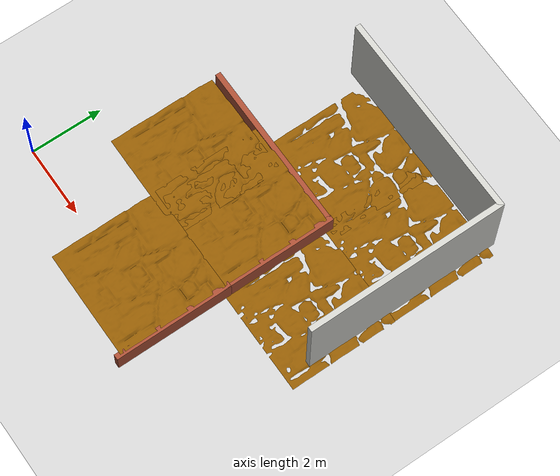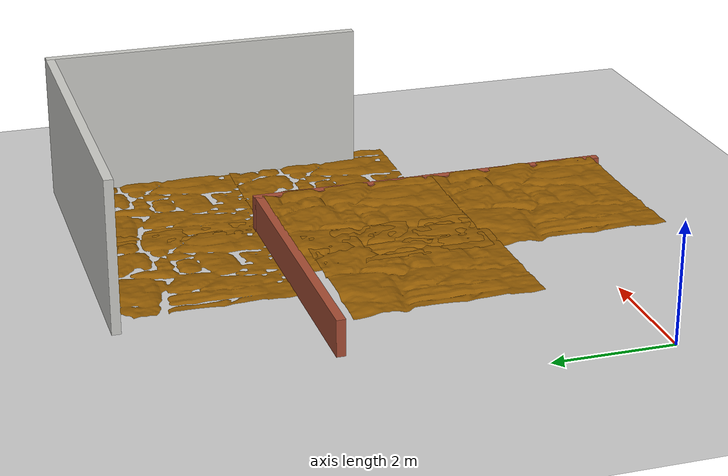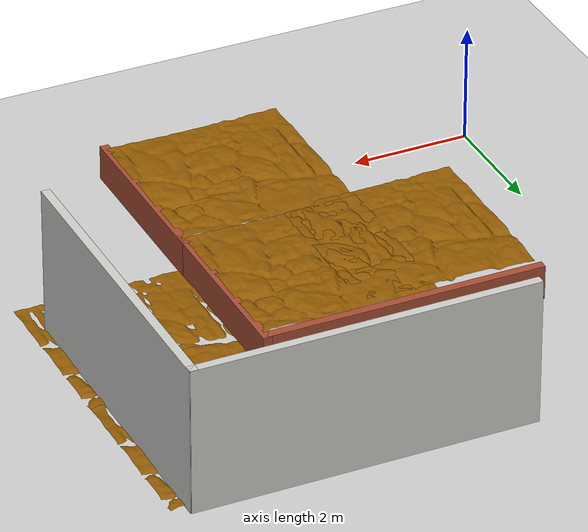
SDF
<sdf version="1.6">
 <world name="default">
  <model name="ground_plane">
   <static>1</static>
   <link name="link">
    <collision name="collision">
     <geometry><plane><normal>0 0 1</normal><size>100 100</size></plane></geometry>
     <surface>
      <contact><collide_bitmask>65535</collide_bitmask></contact>
      <friction><ode><mu>100</mu><mu2>50</mu2></ode></friction>
     </surface>
    </collision>
    <visual name="visual">
     <cast_shadows>0</cast_shadows>
     <geometry><plane><normal>0 0 1</normal><size>100 100</size></plane></geometry>
     <material>
      <script><uri>file://media/materials/scripts/gazebo.material</uri><name>Gazebo/Grey</name></script>
     </material>
    </visual>
   </link>
  </model>
  <model name="pared_corta_ladrillo_1">
   <pose>5.85369 0.295655 0 0 -0 0</pose>
   <link name="Wall_13">
    <collision name="Wall_13_Collision">
     <geometry><box><size>3.25 0.15 0.6</size></box></geometry>
     <pose>0 0 0.3 0 -0 0</pose>
    </collision>
    <visual name="Wall_13_Visual">
     <pose>0 0 0.3 0 -0 0</pose>
     <geometry><box><size>3.25 0.15 0.6</size></box></geometry>
     <material>
      <script><uri>file://media/materials/scripts/gazebo.material</uri><name>Gazebo/Bricks</name></script>
      <ambient>0.996078 0.47451 0.0196078 1</ambient>
     </material>
     <meta><layer>0</layer></meta>
    </visual>
    <pose>0 -0 0 0 -0 1.5708</pose>
   </link>
   <static>1</static>
  </model>
  <model name="pared_corta_ladrillo_2">
   <pose>5.84693 3.30125 0 0 -0 0</pose>
   <link name="Wall_13">
    <collision name="Wall_13_Collision">
     <geometry><box><size>3.25 0.15 0.6</size></box></geometry>
     <pose>0 0 0.3 0 -0 0</pose>
    </collision>
    <visual name="Wall_13_Visual">
     <pose>0 0 0.3 0 -0 0</pose>
     <geometry><box><size>3.25 0.15 0.6</size></box></geometry>
     <material>
      <script><uri>file://media/materials/scripts/gazebo.material</uri><name>Gazebo/Bricks</name></script>
      <ambient>0.996078 0.47451 0.0196078 1</ambient>
     </material>
     <meta><layer>0</layer></meta>
    </visual>
    <pose>0 -0 0 0 -0 1.5708</pose>
   </link>
   <static>1</static>
  </model>
  <model name="pared_corta_lad_2_0">
   <pose>3.45558 4.83564 0 0 -0 0</pose>
   <link name="Wall_19">
    <collision name="Wall_19_Collision">
     <geometry><box><size>4.75 0.15 0.6</size></box></geometry>
     <pose>0 0 0.3 0 -0 0</pose>
    </collision>
    <visual name="Wall_19_Visual">
     <pose>0 0 0.3 0 -0 0</pose>
     <geometry><box><size>4.75 0.15 0.6</size></box></geometry>
     <material>
      <script><uri>file://media/materials/scripts/gazebo.material</uri><name>Gazebo/Bricks</name></script>
      <ambient>1 1 1 1</ambient>
     </material>
     <meta><layer>0</layer></meta>
    </visual>
   </link>
   <static>1</static>
  </model>
  <model name="suelo_alto_0">
   <link name="link_0">
    <inertial>
     <mass>1</mass>
     <inertia>
      <ixx>0.166667</ixx>
      <ixy>0</ixy>
      <ixz>0</ixz>
      <iyy>0.166667</iyy>
      <iyz>0</iyz>
      <izz>0.166667</izz>
     </inertia>
    </inertial>
    <pose>-2e-06 0 0 0 -0 0</pose>
    <gravity>0</gravity>
    <visual name="visual">
     <pose>0 0 0.6 1.57 -0 0</pose>
     <geometry>
      <mesh>
       <uri>/home/christyan/catkin_sureveg/src/explorador_2/worlds/Plantas/roca2.stl</uri>
       <scale>0.005 0.003 0.005</scale>
      </mesh>
     </geometry>
     <material>
      <lighting>1</lighting>
      <script><uri>file://media/materials/scripts/gazebo.material</uri><name>Gazebo/Grey</name></script>
      <shader type="vertex"><normal_map>__default__</normal_map></shader>
      <ambient>0.561 0.349 0.008 1</ambient>
      <diffuse>0.333 0.341 0.325 1</diffuse>
      <specular>0.561 0.349 0.008 1</specular>
      <emissive>0 0 0 1</emissive>
     </material>
    </visual>
    <collision name="collision">
     <pose>0 0 0.6 1.57 -0 0</pose>
     <geometry>
      <mesh>
       <uri>/home/christyan/catkin_sureveg/src/explorador_2/worlds/Plantas/roca2.stl</uri>
       <scale>0.005 0.003 0.005</scale>
      </mesh>
     </geometry>
     <surface>
      <friction>
       <ode><mu>1</mu><mu2>1</mu2><fdir1>0 0 0</fdir1><slip1>0</slip1><slip2>0</slip2></ode>
       <torsional>
        <coefficient>1</coefficient>
        <patch_radius>0</patch_radius>
        <surface_radius>0</surface_radius>
        <use_patch_radius>1</use_patch_radius>
        <ode><slip>0</slip></ode>
       </torsional>
      </friction>
      <bounce><restitution_coefficient>0</restitution_coefficient><threshold>1e+06</threshold></bounce>
      <contact>
       <collide_without_contact>1</collide_without_contact>
       <collide_without_contact_bitmask>1</collide_without_contact_bitmask>
       <collide_bitmask>1</collide_bitmask>
       <ode>
        <soft_cfm>0</soft_cfm>
        <soft_erp>0.2</soft_erp>
        <kp>1e+13</kp>
        <kd>1</kd>
        <max_vel>0.01</max_vel>
        <min_depth>0</min_depth>
       </ode>
       <bullet>
        <split_impulse>1</split_impulse>
        <split_impulse_penetration_threshold>-0.01</split_impulse_penetration_threshold>
        <soft_cfm>0</soft_cfm>
        <soft_erp>0.2</soft_erp>
        <kp>1e+13</kp>
        <kd>1</kd>
       </bullet>
      </contact>
     </surface>
    </collision>
   </link>
   <static>0</static>
   <pose>2.62225 3.13264 0 0 -0 0</pose>
  </model>
  <model name="suelo_alto_1">
   <link name="link_0">
    <inertial>
     <mass>1</mass>
     <inertia>
      <ixx>0.166667</ixx>
      <ixy>0</ixy>
      <ixz>0</ixz>
      <iyy>0.166667</iyy>
      <iyz>0</iyz>
      <izz>0.166667</izz>
     </inertia>
    </inertial>
    <pose>-2e-06 0 0 0 -0 0</pose>
    <gravity>0</gravity>
    <visual name="visual">
     <pose>0 0 0.6 1.57 -0 0</pose>
     <geometry>
      <mesh>
       <uri>/home/christyan/catkin_sureveg/src/explorador_2/worlds/Plantas/roca2.stl</uri>
       <scale>0.005 0.003 0.005</scale>
      </mesh>
     </geometry>
     <material>
      <lighting>1</lighting>
      <script><uri>file://media/materials/scripts/gazebo.material</uri><name>Gazebo/Grey</name></script>
      <shader type="vertex"><normal_map>__default__</normal_map></shader>
      <ambient>0.561 0.349 0.008 1</ambient>
      <diffuse>0.333 0.341 0.325 1</diffuse>
      <specular>0.561 0.349 0.008 1</specular>
      <emissive>0 0 0 1</emissive>
     </material>
    </visual>
    <collision name="collision">
     <pose>0 0 0.6 1.57 -0 0</pose>
     <geometry>
      <mesh>
       <uri>/home/christyan/catkin_sureveg/src/explorador_2/worlds/Plantas/roca2.stl</uri>
       <scale>0.005 0.003 0.005</scale>
      </mesh>
     </geometry>
     <surface>
      <friction>
       <ode><mu>1</mu><mu2>1</mu2><fdir1>0 0 0</fdir1><slip1>0</slip1><slip2>0</slip2></ode>
       <torsional>
        <coefficient>1</coefficient>
        <patch_radius>0</patch_radius>
        <surface_radius>0</surface_radius>
        <use_patch_radius>1</use_patch_radius>
        <ode><slip>0</slip></ode>
       </torsional>
      </friction>
      <bounce><restitution_coefficient>0</restitution_coefficient><threshold>1e+06</threshold></bounce>
      <contact>
       <collide_without_contact>1</collide_without_contact>
       <collide_without_contact_bitmask>1</collide_without_contact_bitmask>
       <collide_bitmask>1</collide_bitmask>
       <ode>
        <soft_cfm>0</soft_cfm>
        <soft_erp>0.2</soft_erp>
        <kp>1e+13</kp>
        <kd>1</kd>
        <max_vel>0.01</max_vel>
        <min_depth>0</min_depth>
       </ode>
       <bullet>
        <split_impulse>1</split_impulse>
        <split_impulse_penetration_threshold>-0.01</split_impulse_penetration_threshold>
        <soft_cfm>0</soft_cfm>
        <soft_erp>0.2</soft_erp>
        <kp>1e+13</kp>
        <kd>1</kd>
       </bullet>
      </contact>
     </surface>
    </collision>
   </link>
   <static>0</static>
   <pose>4.36566 0.301741 0 0 -0 0</pose>
  </model>
  <model name="suelo_alto_2">
   <link name="link_0">
    <inertial>
     <mass>1</mass>
     <inertia>
      <ixx>0.166667</ixx>
      <ixy>0</ixy>
      <ixz>0</ixz>
      <iyy>0.166667</iyy>
      <iyz>0</iyz>
      <izz>0.166667</izz>
     </inertia>
    </inertial>
    <pose>-2e-06 0 0 0 -0 0</pose>
    <gravity>0</gravity>
    <visual name="visual">
     <pose>0 0 0.6 1.57 -0 0</pose>
     <geometry>
      <mesh>
       <uri>/home/christyan/catkin_sureveg/src/explorador_2/worlds/Plantas/roca2.stl</uri>
       <scale>0.005 0.003 0.005</scale>
      </mesh>
     </geometry>
     <material>
      <lighting>1</lighting>
      <script><uri>file://media/materials/scripts/gazebo.material</uri><name>Gazebo/Grey</name></script>
      <shader type="vertex"><normal_map>__default__</normal_map></shader>
      <ambient>0.561 0.349 0.008 1</ambient>
      <diffuse>0.333 0.341 0.325 1</diffuse>
      <specular>0.561 0.349 0.008 1</specular>
      <emissive>0 0 0 1</emissive>
     </material>
    </visual>
    <collision name="collision">
     <pose>0 0 0.6 1.57 -0 0</pose>
     <geometry>
      <mesh>
       <uri>/home/christyan/catkin_sureveg/src/explorador_2/worlds/Plantas/roca2.stl</uri>
       <scale>0.005 0.003 0.005</scale>
      </mesh>
     </geometry>
     <surface>
      <friction>
       <ode><mu>1</mu><mu2>1</mu2><fdir1>0 0 0</fdir1><slip1>0</slip1><slip2>0</slip2></ode>
       <torsional>
        <coefficient>1</coefficient>
        <patch_radius>0</patch_radius>
        <surface_radius>0</surface_radius>
        <use_patch_radius>1</use_patch_radius>
        <ode><slip>0</slip></ode>
       </torsional>
      </friction>
      <bounce><restitution_coefficient>0</restitution_coefficient><threshold>1e+06</threshold></bounce>
      <contact>
       <collide_without_contact>1</collide_without_contact>
       <collide_without_contact_bitmask>1</collide_without_contact_bitmask>
       <collide_bitmask>1</collide_bitmask>
       <ode>
        <soft_cfm>0</soft_cfm>
        <soft_erp>0.2</soft_erp>
        <kp>1e+13</kp>
        <kd>1</kd>
        <max_vel>0.01</max_vel>
        <min_depth>0</min_depth>
       </ode>
       <bullet>
        <split_impulse>1</split_impulse>
        <split_impulse_penetration_threshold>-0.01</split_impulse_penetration_threshold>
        <soft_cfm>0</soft_cfm>
        <soft_erp>0.2</soft_erp>
        <kp>1e+13</kp>
        <kd>1</kd>
       </bullet>
      </contact>
     </surface>
    </collision>
   </link>
   <static>0</static>
   <pose>4.34843 3.27788 0 0 -0 0</pose>
  </model>
  <model name="pared_2_0">
   <pose>5.59936 7.8412 0 0 -0 0</pose>
   <link name="Wall_24">
    <collision name="Wall_24_Collision">
     <geometry><box><size>5.75 0.15 2.5</size></box></geometry>
     <pose>0 0 1.25 0 -0 0</pose>
    </collision>
    <visual name="Wall_24_Visual">
     <pose>0 0 1.25 0 -0 0</pose>
     <geometry><box><size>5.75 0.15 2.5</size></box></geometry>
     <material>
      <script><uri>file://media/materials/scripts/gazebo.material</uri><name>Gazebo/CeilingTiled</name></script>
      <ambient>1 1 1 1</ambient>
     </material>
     <meta><layer>0</layer></meta>
    </visual>
   </link>
   <static>1</static>
  </model>
  <model name="pared_1_2">
   <pose>8.41269 5.15772 0 0 -0 0</pose>
   <link name="Wall_21">
    <collision name="Wall_21_Collision">
     <geometry><box><size>5.5 0.15 2.5</size></box></geometry>
     <pose>0 0 1.25 0 -0 0</pose>
    </collision>
    <visual name="Wall_21_Visual">
     <pose>0 0 1.25 0 -0 0</pose>
     <geometry><box><size>5.5 0.15 2.5</size></box></geometry>
     <material>
      <script><uri>file://media/materials/scripts/gazebo.material</uri><name>Gazebo/CeilingTiled</name></script>
      <ambient>1 1 1 1</ambient>
     </material>
     <meta><layer>0</layer></meta>
    </visual>
    <pose>0 0 0 0 -0 -1.5708</pose>
   </link>
   <static>1</static>
  </model>
  <model name="suelo_1_5">
   <link name="link_0">
    <inertial>
     <mass>1</mass>
     <inertia>
      <ixx>0.166667</ixx>
      <ixy>0</ixy>
      <ixz>0</ixz>
      <iyy>0.166667</iyy>
      <iyz>0</iyz>
      <izz>0.166667</izz>
     </inertia>
    </inertial>
    <pose>-2e-06 0 0 0 -0 0</pose>
    <gravity>0</gravity>
    <visual name="visual">
     <pose>0 0 0 1.57 -0 0</pose>
     <geometry>
      <mesh>
       <uri>/home/christyan/catkin_sureveg/src/explorador_2/worlds/Plantas/roca2.stl</uri>
       <scale>0.005 0.003 0.005</scale>
      </mesh>
     </geometry>
     <material>
      <lighting>1</lighting>
      <script><uri>file://media/materials/scripts/gazebo.material</uri><name>Gazebo/Grey</name></script>
      <shader type="vertex"><normal_map>__default__</normal_map></shader>
      <ambient>0.561 0.349 0.008 1</ambient>
      <diffuse>0.333 0.341 0.325 1</diffuse>
      <specular>0.561 0.349 0.008 1</specular>
      <emissive>0 0 0 1</emissive>
     </material>
    </visual>
    <collision name="collision">
     <pose>0 0 0 1.57 -0 0</pose>
     <geometry>
      <mesh>
       <uri>/home/christyan/catkin_sureveg/src/explorador_2/worlds/Plantas/roca2.stl</uri>
       <scale>0.005 0.003 0.005</scale>
      </mesh>
     </geometry>
     <surface>
      <friction>
       <ode><mu>1</mu><mu2>1</mu2><fdir1>0 0 0</fdir1><slip1>0</slip1><slip2>0</slip2></ode>
       <torsional>
        <coefficient>1</coefficient>
        <patch_radius>0</patch_radius>
        <surface_radius>0</surface_radius>
        <use_patch_radius>1</use_patch_radius>
        <ode><slip>0</slip></ode>
       </torsional>
      </friction>
      <bounce><restitution_coefficient>0</restitution_coefficient><threshold>1e+06</threshold></bounce>
      <contact>
       <collide_without_contact>1</collide_without_contact>
       <collide_without_contact_bitmask>1</collide_without_contact_bitmask>
       <collide_bitmask>1</collide_bitmask>
       <ode>
        <soft_cfm>0</soft_cfm>
        <soft_erp>0.2</soft_erp>
        <kp>1e+13</kp>
        <kd>1</kd>
        <max_vel>0.01</max_vel>
        <min_depth>0</min_depth>
       </ode>
       <bullet>
        <split_impulse>1</split_impulse>
        <split_impulse_penetration_threshold>-0.01</split_impulse_penetration_threshold>
        <soft_cfm>0</soft_cfm>
        <soft_erp>0.2</soft_erp>
        <kp>1e+13</kp>
        <kd>1</kd>
       </bullet>
      </contact>
     </surface>
    </collision>
   </link>
   <static>0</static>
   <pose>4.68724 6.33488 0 0 -0 0</pose>
  </model>
  <model name="suelo_1_6">
   <link name="link_0">
    <inertial>
     <mass>1</mass>
     <inertia>
      <ixx>0.166667</ixx>
      <ixy>0</ixy>
      <ixz>0</ixz>
      <iyy>0.166667</iyy>
      <iyz>0</iyz>
      <izz>0.166667</izz>
     </inertia>
    </inertial>
    <pose>-2e-06 0 0 0 -0 0</pose>
    <gravity>0</gravity>
    <visual name="visual">
     <pose>0 0 0 1.57 -0 0</pose>
     <geometry>
      <mesh>
       <uri>/home/christyan/catkin_sureveg/src/explorador_2/worlds/Plantas/roca2.stl</uri>
       <scale>0.005 0.003 0.005</scale>
      </mesh>
     </geometry>
     <material>
      <lighting>1</lighting>
      <script><uri>file://media/materials/scripts/gazebo.material</uri><name>Gazebo/Grey</name></script>
      <shader type="vertex"><normal_map>__default__</normal_map></shader>
      <ambient>0.561 0.349 0.008 1</ambient>
      <diffuse>0.333 0.341 0.325 1</diffuse>
      <specular>0.561 0.349 0.008 1</specular>
      <emissive>0 0 0 1</emissive>
     </material>
    </visual>
    <collision name="collision">
     <pose>0 0 0 1.57 -0 0</pose>
     <geometry>
      <mesh>
       <uri>/home/christyan/catkin_sureveg/src/explorador_2/worlds/Plantas/roca2.stl</uri>
       <scale>0.005 0.003 0.005</scale>
      </mesh>
     </geometry>
     <surface>
      <friction>
       <ode><mu>1</mu><mu2>1</mu2><fdir1>0 0 0</fdir1><slip1>0</slip1><slip2>0</slip2></ode>
       <torsional>
        <coefficient>1</coefficient>
        <patch_radius>0</patch_radius>
        <surface_radius>0</surface_radius>
        <use_patch_radius>1</use_patch_radius>
        <ode><slip>0</slip></ode>
       </torsional>
      </friction>
      <bounce><restitution_coefficient>0</restitution_coefficient><threshold>1e+06</threshold></bounce>
      <contact>
       <collide_without_contact>1</collide_without_contact>
       <collide_without_contact_bitmask>1</collide_without_contact_bitmask>
       <collide_bitmask>1</collide_bitmask>
       <ode>
        <soft_cfm>0</soft_cfm>
        <soft_erp>0.2</soft_erp>
        <kp>1e+13</kp>
        <kd>1</kd>
        <max_vel>0.01</max_vel>
        <min_depth>0</min_depth>
       </ode>
       <bullet>
        <split_impulse>1</split_impulse>
        <split_impulse_penetration_threshold>-0.01</split_impulse_penetration_threshold>
        <soft_cfm>0</soft_cfm>
        <soft_erp>0.2</soft_erp>
        <kp>1e+13</kp>
        <kd>1</kd>
       </bullet>
      </contact>
     </surface>
    </collision>
   </link>
   <static>0</static>
   <pose>7.22593 6.2212 0 0 -0 0</pose>
  </model>
  <model name="suelo_1_7">
   <link name="link_0">
    <inertial>
     <mass>1</mass>
     <inertia>
      <ixx>0.166667</ixx>
      <ixy>0</ixy>
      <ixz>0</ixz>
      <iyy>0.166667</iyy>
      <iyz>0</iyz>
      <izz>0.166667</izz>
     </inertia>
    </inertial>
    <pose>-2e-06 0 0 0 -0 0</pose>
    <gravity>0</gravity>
    <visual name="visual">
     <pose>0 0 0 1.57 -0 0</pose>
     <geometry>
      <mesh>
       <uri>/home/christyan/catkin_sureveg/src/explorador_2/worlds/Plantas/roca2.stl</uri>
       <scale>0.005 0.003 0.005</scale>
      </mesh>
     </geometry>
     <material>
      <lighting>1</lighting>
      <script><uri>file://media/materials/scripts/gazebo.material</uri><name>Gazebo/Grey</name></script>
      <shader type="vertex"><normal_map>__default__</normal_map></shader>
      <ambient>0.561 0.349 0.008 1</ambient>
      <diffuse>0.333 0.341 0.325 1</diffuse>
      <specular>0.561 0.349 0.008 1</specular>
      <emissive>0 0 0 1</emissive>
     </material>
    </visual>
    <collision name="collision">
     <pose>0 0 0 1.57 -0 0</pose>
     <geometry>
      <mesh>
       <uri>/home/christyan/catkin_sureveg/src/explorador_2/worlds/Plantas/roca2.stl</uri>
       <scale>0.005 0.003 0.005</scale>
      </mesh>
     </geometry>
     <surface>
      <friction>
       <ode><mu>1</mu><mu2>1</mu2><fdir1>0 0 0</fdir1><slip1>0</slip1><slip2>0</slip2></ode>
       <torsional>
        <coefficient>1</coefficient>
        <patch_radius>0</patch_radius>
        <surface_radius>0</surface_radius>
        <use_patch_radius>1</use_patch_radius>
        <ode><slip>0</slip></ode>
       </torsional>
      </friction>
      <bounce><restitution_coefficient>0</restitution_coefficient><threshold>1e+06</threshold></bounce>
      <contact>
       <collide_without_contact>1</collide_without_contact>
       <collide_without_contact_bitmask>1</collide_without_contact_bitmask>
       <collide_bitmask>1</collide_bitmask>
       <ode>
        <soft_cfm>0</soft_cfm>
        <soft_erp>0.2</soft_erp>
        <kp>1e+13</kp>
        <kd>1</kd>
        <max_vel>0.01</max_vel>
        <min_depth>0</min_depth>
       </ode>
       <bullet>
        <split_impulse>1</split_impulse>
        <split_impulse_penetration_threshold>-0.01</split_impulse_penetration_threshold>
        <soft_cfm>0</soft_cfm>
        <soft_erp>0.2</soft_erp>
        <kp>1e+13</kp>
        <kd>1</kd>
       </bullet>
      </contact>
     </surface>
    </collision>
   </link>
   <static>0</static>
   <pose>7.23531 3.26204 0 0 -0 0</pose>
  </model>
 </world>
</sdf>
